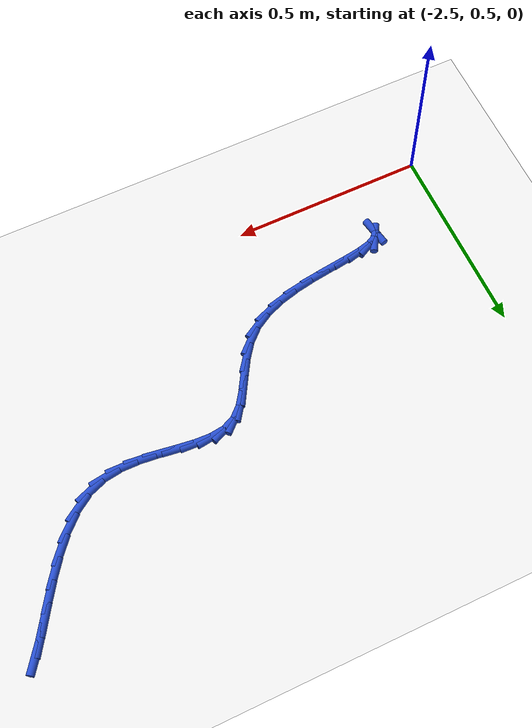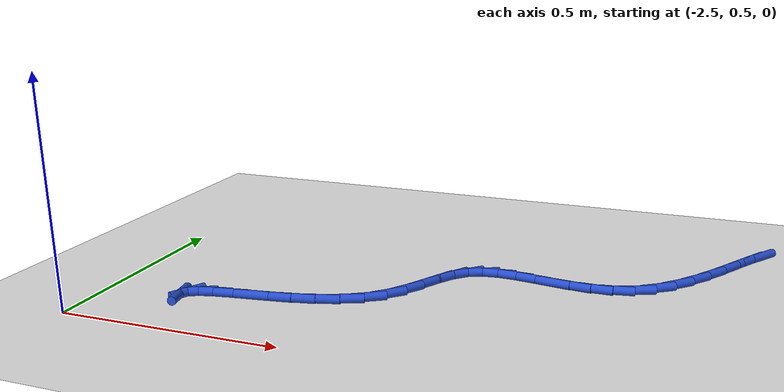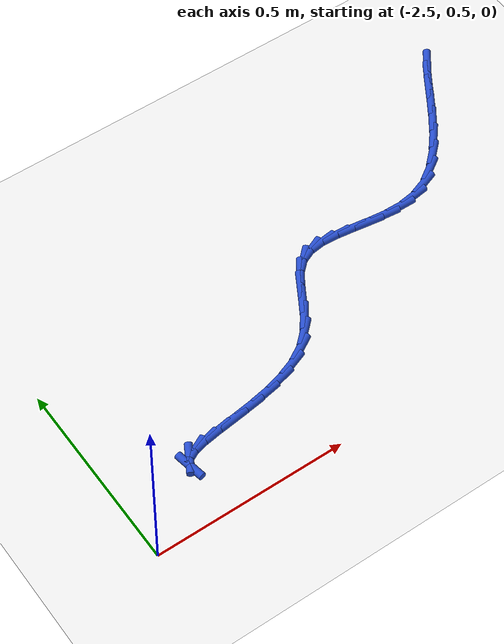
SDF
<sdf version="1.6">
 <world name="default">
  <model name="ground_plane">
   <static>1</static>
   <link name="link">
    <collision name="collision">
     <geometry><plane><normal>0 0 1</normal><size>100 100</size></plane></geometry>
     <surface><friction><ode><mu>100</mu><mu2>50</mu2></ode></friction></surface>
    </collision>
    <visual name="visual">
     <cast_shadows>0</cast_shadows>
     <geometry><plane><normal>0 0 1</normal><size>100 100</size></plane></geometry>
     <material>
      <script><uri>file://media/materials/scripts/gazebo.material</uri><name>Gazebo/WhiteGlow</name></script>
     </material>
    </visual>
   </link>
  </model>
  <model name="line">
   <link name="link_54">
    <pose>-1.133468928514187 1.2944231144171385 0.01 0 1.57 0.9371542961048148</pose>
    <collision name="collision">
     <geometry><cylinder><radius>0.01</radius><length>0.08</length></cylinder></geometry>
    </collision>
    <visual name="visual">
     <material>
      <script><name>Gazebo/Blue</name><uri>file://media/materials/scripts/gazebo.material</uri></script>
     </material>
     <geometry><cylinder><radius>0.01</radius><length>0.08</length></cylinder></geometry>
    </visual>
   </link>
   <link name="link_55">
    <pose>-1.1568302141045534 1.262626410298869 0.01 0 1.57 0.9895155194570046</pose>
    <collision name="collision">
     <geometry><cylinder><radius>0.01</radius><length>0.08</length></cylinder></geometry>
    </collision>
    <visual name="visual">
     <material>
      <script><name>Gazebo/Blue</name><uri>file://media/materials/scripts/gazebo.material</uri></script>
     </material>
     <geometry><cylinder><radius>0.01</radius><length>0.08</length></cylinder></geometry>
    </visual>
   </link>
   <link name="link_56">
    <pose>-1.1825127834298388 1.2235357758599676 0.01 0 1.57 1.0002432786251882</pose>
    <collision name="collision">
     <geometry><cylinder><radius>0.01</radius><length>0.08</length></cylinder></geometry>
    </collision>
    <visual name="visual">
     <material>
      <script><name>Gazebo/Blue</name><uri>file://media/materials/scripts/gazebo.material</uri></script>
     </material>
     <geometry><cylinder><radius>0.01</radius><length>0.08</length></cylinder></geometry>
    </visual>
   </link>
   <link name="link_57">
    <pose>-1.2105800740321246 1.17980016176865 0.01 0 1.57 0.9823746955705589</pose>
    <collision name="collision">
     <geometry><cylinder><radius>0.01</radius><length>0.08</length></cylinder></geometry>
    </collision>
    <visual name="visual">
     <material>
      <script><name>Gazebo/Blue</name><uri>file://media/materials/scripts/gazebo.material</uri></script>
     </material>
     <geometry><cylinder><radius>0.01</radius><length>0.08</length></cylinder></geometry>
    </visual>
   </link>
   <link name="link_58">
    <pose>-1.2410955234534937 1.134068518693133 0.01 0 1.57 0.9384902605620125</pose>
    <collision name="collision">
     <geometry><cylinder><radius>0.01</radius><length>0.08</length></cylinder></geometry>
    </collision>
    <visual name="visual">
     <material>
      <script><name>Gazebo/Blue</name><uri>file://media/materials/scripts/gazebo.material</uri></script>
     </material>
     <geometry><cylinder><radius>0.01</radius><length>0.08</length></cylinder></geometry>
    </visual>
   </link>
   <link name="link_59">
    <pose>-1.274122569236028 1.0889897973016298 0.01 0 1.57 0.865028529700913</pose>
    <collision name="collision">
     <geometry><cylinder><radius>0.01</radius><length>0.08</length></cylinder></geometry>
    </collision>
    <visual name="visual">
     <material>
      <script><name>Gazebo/Blue</name><uri>file://media/materials/scripts/gazebo.material</uri></script>
     </material>
     <geometry><cylinder><radius>0.01</radius><length>0.08</length></cylinder></geometry>
    </visual>
   </link>
   <link name="link_60">
    <pose>-1.3097246489218104 1.0472129482623578 0.01 0 1.57 0.7528103156980193</pose>
    <collision name="collision">
     <geometry><cylinder><radius>0.01</radius><length>0.08</length></cylinder></geometry>
    </collision>
    <visual name="visual">
     <material>
      <script><name>Gazebo/Blue</name><uri>file://media/materials/scripts/gazebo.material</uri></script>
     </material>
     <geometry><cylinder><radius>0.01</radius><length>0.08</length></cylinder></geometry>
    </visual>
   </link>
   <link name="link_61">
    <pose>-1.3479652000529228 1.0113869222435319 0.01 0 1.57 0.5868396788671997</pose>
    <collision name="collision">
     <geometry><cylinder><radius>0.01</radius><length>0.08</length></cylinder></geometry>
    </collision>
    <visual name="visual">
     <material>
      <script><name>Gazebo/Blue</name><uri>file://media/materials/scripts/gazebo.material</uri></script>
     </material>
     <geometry><cylinder><radius>0.01</radius><length>0.08</length></cylinder></geometry>
    </visual>
   </link>
   <link name="link_62">
    <pose>-1.3889076601714474 0.9841606699133674 0.01 0 1.57 0.3581391807869256</pose>
    <collision name="collision">
     <geometry><cylinder><radius>0.01</radius><length>0.08</length></cylinder></geometry>
    </collision>
    <visual name="visual">
     <material>
      <script><name>Gazebo/Blue</name><uri>file://media/materials/scripts/gazebo.material</uri></script>
     </material>
     <geometry><cylinder><radius>0.01</radius><length>0.08</length></cylinder></geometry>
    </visual>
   </link>
   <link name="link_63">
    <pose>-1.4325448660186675 0.9678281418438192 0.01 0 1.57 0.13950697402411846</pose>
    <collision name="collision">
     <geometry><cylinder><radius>0.01</radius><length>0.08</length></cylinder></geometry>
    </collision>
    <visual name="visual">
     <material>
      <script><name>Gazebo/Blue</name><uri>file://media/materials/scripts/gazebo.material</uri></script>
     </material>
     <geometry><cylinder><radius>0.01</radius><length>0.08</length></cylinder></geometry>
    </visual>
   </link>
   <link name="link_64">
    <pose>-1.4782195803113705 0.9614145389799112 0.01 0 1.57 -0.016452622815223698</pose>
    <collision name="collision">
     <geometry><cylinder><radius>0.01</radius><length>0.08</length></cylinder></geometry>
    </collision>
    <visual name="visual">
     <material>
      <script><name>Gazebo/Blue</name><uri>file://media/materials/scripts/gazebo.material</uri></script>
     </material>
     <geometry><cylinder><radius>0.01</radius><length>0.08</length></cylinder></geometry>
    </visual>
   </link>
   <link name="link_65">
    <pose>-1.5249241389938384 0.9621830208087241 0.01 0 1.57 -0.11076613675632105</pose>
    <collision name="collision">
     <geometry><cylinder><radius>0.01</radius><length>0.08</length></cylinder></geometry>
    </collision>
    <visual name="visual">
     <material>
      <script><name>Gazebo/Blue</name><uri>file://media/materials/scripts/gazebo.material</uri></script>
     </material>
     <geometry><cylinder><radius>0.01</radius><length>0.08</length></cylinder></geometry>
    </visual>
   </link>
   <link name="link_66">
    <pose>-1.571647478827977 0.9673796548005772 0.01 0 1.57 -0.14912935221293497</pose>
    <collision name="collision">
     <geometry><cylinder><radius>0.01</radius><length>0.08</length></cylinder></geometry>
    </collision>
    <visual name="visual">
     <material>
      <script><name>Gazebo/Blue</name><uri>file://media/materials/scripts/gazebo.material</uri></script>
     </material>
     <geometry><cylinder><radius>0.01</radius><length>0.08</length></cylinder></geometry>
    </visual>
   </link>
   <link name="link_67">
    <pose>-1.6173785365756927 0.9742505084257914 0.01 0 1.57 -0.13167016068354884</pose>
    <collision name="collision">
     <geometry><cylinder><radius>0.01</radius><length>0.08</length></cylinder></geometry>
    </collision>
    <visual name="visual">
     <material>
      <script><name>Gazebo/Blue</name><uri>file://media/materials/scripts/gazebo.material</uri></script>
     </material>
     <geometry><cylinder><radius>0.01</radius><length>0.08</length></cylinder></geometry>
    </visual>
   </link>
   <link name="link_68">
    <pose>-1.6611062489988917 0.980041649154686 0.01 0 1.57 -0.04804299417828327</pose>
    <collision name="collision">
     <geometry><cylinder><radius>0.01</radius><length>0.08</length></cylinder></geometry>
    </collision>
    <visual name="visual">
     <material>
      <script><name>Gazebo/Blue</name><uri>file://media/materials/scripts/gazebo.material</uri></script>
     </material>
     <geometry><cylinder><radius>0.01</radius><length>0.08</length></cylinder></geometry>
    </visual>
   </link>
   <link name="link_69">
    <pose>-1.7018195528594793 0.9819991444575814 0.01 0 1.57 0.12553845731804164</pose>
    <collision name="collision">
     <geometry><cylinder><radius>0.01</radius><length>0.08</length></cylinder></geometry>
    </collision>
    <visual name="visual">
     <material>
      <script><name>Gazebo/Blue</name><uri>file://media/materials/scripts/gazebo.material</uri></script>
     </material>
     <geometry><cylinder><radius>0.01</radius><length>0.08</length></cylinder></geometry>
    </visual>
   </link>
   <link name="link_70">
    <pose>-1.7385073849193629 0.9773690618047979 0.01 0 1.57 0.41567508856843777</pose>
    <collision name="collision">
     <geometry><cylinder><radius>0.01</radius><length>0.08</length></cylinder></geometry>
    </collision>
    <visual name="visual">
     <material>
      <script><name>Gazebo/Blue</name><uri>file://media/materials/scripts/gazebo.material</uri></script>
     </material>
     <geometry><cylinder><radius>0.01</radius><length>0.08</length></cylinder></geometry>
    </visual>
   </link>
   <link name="link_71">
    <pose>-1.7701590706205068 0.9633981628945976 0.01 0 1.57 0.7542030344829451</pose>
    <collision name="collision">
     <geometry><cylinder><radius>0.01</radius><length>0.08</length></cylinder></geometry>
    </collision>
    <visual name="visual">
     <material>
      <script><name>Gazebo/Blue</name><uri>file://media/materials/scripts/gazebo.material</uri></script>
     </material>
     <geometry><cylinder><radius>0.01</radius><length>0.08</length></cylinder></geometry>
    </visual>
   </link>
   <link name="link_72">
    <pose>-1.7965012951265034 0.9386502199335118 0.01 0 1.57 0.9601447073777327</pose>
    <collision name="collision">
     <geometry><cylinder><radius>0.01</radius><length>0.08</length></cylinder></geometry>
    </collision>
    <visual name="visual">
     <material>
      <script><name>Gazebo/Blue</name><uri>file://media/materials/scripts/gazebo.material</uri></script>
     </material>
     <geometry><cylinder><radius>0.01</radius><length>0.08</length></cylinder></geometry>
    </visual>
   </link>
   <link name="link_73">
    <pose>-1.819531462437243 0.9057447739489267 0.01 0 1.57 1.039166689668857</pose>
    <collision name="collision">
     <geometry><cylinder><radius>0.01</radius><length>0.08</length></cylinder></geometry>
    </collision>
    <visual name="visual">
     <material>
      <script><name>Gazebo/Blue</name><uri>file://media/materials/scripts/gazebo.material</uri></script>
     </material>
     <geometry><cylinder><radius>0.01</radius><length>0.08</length></cylinder></geometry>
    </visual>
   </link>
   <link name="link_74">
    <pose>-1.8416826750490403 0.8680795743262375 0.01 0 1.57 1.0249489774149831</pose>
    <collision name="collision">
     <geometry><cylinder><radius>0.01</radius><length>0.08</length></cylinder></geometry>
    </collision>
    <visual name="visual">
     <material>
      <script><name>Gazebo/Blue</name><uri>file://media/materials/scripts/gazebo.material</uri></script>
     </material>
     <geometry><cylinder><radius>0.01</radius><length>0.08</length></cylinder></geometry>
    </visual>
   </link>
   <link name="link_75">
    <pose>-1.8653880354582113 0.829052370450841 0.01 0 1.57 0.9281778795621108</pose>
    <collision name="collision">
     <geometry><cylinder><radius>0.01</radius><length>0.08</length></cylinder></geometry>
    </collision>
    <visual name="visual">
     <material>
      <script><name>Gazebo/Blue</name><uri>file://media/materials/scripts/gazebo.material</uri></script>
     </material>
     <geometry><cylinder><radius>0.01</radius><length>0.08</length></cylinder></geometry>
    </visual>
   </link>
   <link name="link_76">
    <pose>-1.8930806461610705 0.7920609117081325 0.01 0 1.57 0.7467565721539928</pose>
    <collision name="collision">
     <geometry><cylinder><radius>0.01</radius><length>0.08</length></cylinder></geometry>
    </collision>
    <visual name="visual">
     <material>
      <script><name>Gazebo/Blue</name><uri>file://media/materials/scripts/gazebo.material</uri></script>
     </material>
     <geometry><cylinder><radius>0.01</radius><length>0.08</length></cylinder></geometry>
    </visual>
   </link>
   <link name="link_77">
    <pose>-1.9271855895677508 0.7604948637035878 0.01 0 1.57 0.526431533811003</pose>
    <collision name="collision">
     <geometry><cylinder><radius>0.01</radius><length>0.08</length></cylinder></geometry>
    </collision>
    <visual name="visual">
     <material>
      <script><name>Gazebo/Blue</name><uri>file://media/materials/scripts/gazebo.material</uri></script>
     </material>
     <geometry><cylinder><radius>0.01</radius><length>0.08</length></cylinder></geometry>
    </visual>
   </link>
   <link name="link_78">
    <pose>-1.9687408076876687 0.7363457352820963 0.01 0 1.57 0.359871620331911</pose>
    <collision name="collision">
     <geometry><cylinder><radius>0.01</radius><length>0.08</length></cylinder></geometry>
    </collision>
    <visual name="visual">
     <material>
      <script><name>Gazebo/Blue</name><uri>file://media/materials/scripts/gazebo.material</uri></script>
     </material>
     <geometry><cylinder><radius>0.01</radius><length>0.08</length></cylinder></geometry>
    </visual>
   </link>
   <link name="link_79">
    <pose>-2.0158305776954957 0.7186279131060516 0.01 0 1.57 0.2463112940243135</pose>
    <collision name="collision">
     <geometry><cylinder><radius>0.01</radius><length>0.08</length></cylinder></geometry>
    </collision>
    <visual name="visual">
     <material>
      <script><name>Gazebo/Blue</name><uri>file://media/materials/scripts/gazebo.material</uri></script>
     </material>
     <geometry><cylinder><radius>0.01</radius><length>0.08</length></cylinder></geometry>
    </visual>
   </link>
   <link name="link_80">
    <pose>-2.066160536425164 0.705974136419919 0.01 0 1.57 0.17293776912853898</pose>
    <collision name="collision">
     <geometry><cylinder><radius>0.01</radius><length>0.08</length></cylinder></geometry>
    </collision>
    <visual name="visual">
     <material>
      <script><name>Gazebo/Blue</name><uri>file://media/materials/scripts/gazebo.material</uri></script>
     </material>
     <geometry><cylinder><radius>0.01</radius><length>0.08</length></cylinder></geometry>
    </visual>
   </link>
   <link name="link_81">
    <pose>-2.117436320710603 0.6970171444681639 0.01 0 1.57 0.13197098281103026</pose>
    <collision name="collision">
     <geometry><cylinder><radius>0.01</radius><length>0.08</length></cylinder></geometry>
    </collision>
    <visual name="visual">
     <material>
      <script><name>Gazebo/Blue</name><uri>file://media/materials/scripts/gazebo.material</uri></script>
     </material>
     <geometry><cylinder><radius>0.01</radius><length>0.08</length></cylinder></geometry>
    </visual>
   </link>
   <link name="link_82">
    <pose>-2.1673635673857468 0.690389676495252 0.01 0 1.57 0.12179419795839708</pose>
    <collision name="collision">
     <geometry><cylinder><radius>0.01</radius><length>0.08</length></cylinder></geometry>
    </collision>
    <visual name="visual">
     <material>
      <script><name>Gazebo/Blue</name><uri>file://media/materials/scripts/gazebo.material</uri></script>
     </material>
     <geometry><cylinder><radius>0.01</radius><length>0.08</length></cylinder></geometry>
    </visual>
   </link>
   <link name="link_83">
    <pose>-2.213647913284525 0.6847244717456485 0.01 0 1.57 0.1493296237370794</pose>
    <collision name="collision">
     <geometry><cylinder><radius>0.01</radius><length>0.08</length></cylinder></geometry>
    </collision>
    <visual name="visual">
     <material>
      <script><name>Gazebo/Blue</name><uri>file://media/materials/scripts/gazebo.material</uri></script>
     </material>
     <geometry><cylinder><radius>0.01</radius><length>0.08</length></cylinder></geometry>
    </visual>
   </link>
   <link name="link_84">
    <pose>-2.2539949952408684 0.6786542694638193 0.01 0 1.57 0.23950851110521143</pose>
    <collision name="collision">
     <geometry><cylinder><radius>0.01</radius><length>0.08</length></cylinder></geometry>
    </collision>
    <visual name="visual">
     <material>
      <script><name>Gazebo/Blue</name><uri>file://media/materials/scripts/gazebo.material</uri></script>
     </material>
     <geometry><cylinder><radius>0.01</radius><length>0.08</length></cylinder></geometry>
    </visual>
   </link>
   <link name="link_85">
    <pose>-2.28611045008871 0.6708118088942296 0.01 0 1.57 0.47056198124898824</pose>
    <collision name="collision">
     <geometry><cylinder><radius>0.01</radius><length>0.08</length></cylinder></geometry>
    </collision>
    <visual name="visual">
     <material>
      <script><name>Gazebo/Blue</name><uri>file://media/materials/scripts/gazebo.material</uri></script>
     </material>
     <geometry><cylinder><radius>0.01</radius><length>0.08</length></cylinder></geometry>
    </visual>
   </link>
   <link name="link_86">
    <pose>-2.307699914661982 0.6598298292813456 0.01 0 1.57 1.0471923221539925</pose>
    <collision name="collision">
     <geometry><cylinder><radius>0.01</radius><length>0.08</length></cylinder></geometry>
    </collision>
    <visual name="visual">
     <material>
      <script><name>Gazebo/Blue</name><uri>file://media/materials/scripts/gazebo.material</uri></script>
     </material>
     <geometry><cylinder><radius>0.01</radius><length>0.08</length></cylinder></geometry>
    </visual>
   </link>
   <link name="link_87">
    <pose>-2.3166093444651037 0.644398430545335 0.01 0 1.57 -1.3933457706968422</pose>
    <collision name="collision">
     <geometry><cylinder><radius>0.01</radius><length>0.08</length></cylinder></geometry>
    </collision>
    <visual name="visual">
     <material>
      <script><name>Gazebo/Blue</name><uri>file://media/materials/scripts/gazebo.material</uri></script>
     </material>
     <geometry><cylinder><radius>0.01</radius><length>0.08</length></cylinder></geometry>
    </visual>
   </link>
  </model>
 </world>
</sdf>
